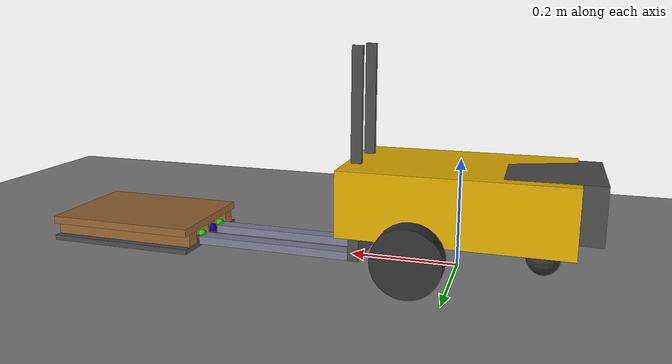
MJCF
<?xml version="1.0" encoding="utf-8"?>
<mujoco model="forklift_pallet_scene">

  <option timestep="0.002" gravity="0 0 -9.81" integrator="RK4" cone="elliptic"/>

  <default>
    <geom condim="3" friction="0.8 0.01 0.01"
          solref="0.02 1" solimp="0.9 0.95 0.001"/>
    <joint damping="0.5" armature="0.01"/>
  </default>

  <asset>
    <texture name="floor_tex" type="2d" builtin="checker"
             rgb1="0.6 0.6 0.6" rgb2="0.4 0.4 0.4" width="512" height="512"/>
    <material name="floor_mat"  texture="floor_tex" texrepeat="4 4" reflectance="0.1"/>
    <material name="body_mat"   rgba="0.9 0.7 0.0 1"/>
    <material name="wheel_mat"  rgba="0.2 0.2 0.2 1"/>
    <material name="fork_mat"   rgba="0.5 0.5 0.6 1"/>
    <material name="mast_mat"   rgba="0.3 0.3 0.3 1"/>
    <material name="pallet_mat" rgba="0.6 0.4 0.2 1"/>
  </asset>

  <worldbody>

    <geom name="floor" type="plane" size="5 5 0.1"
          material="floor_mat" condim="3" friction="0.8 0.01 0.01"
          solref="0.02 1" solimp="0.9 0.95 0.001"/>

    <!-- ── Forklift ── -->
    <body name="base_link" pos="0 0 0.13">
      <freejoint name="root"/>
      <geom name="base_geom" type="box" size="0.20 0.125 0.06"
            material="body_mat" mass="5.0"/>
      <geom name="counterweight_geom" type="box" size="0.08 0.10 0.05"
            pos="-0.16 0 0.01" material="mast_mat" mass="4.0"/>

      <body name="left_wheel_body" pos="0.06 0.175 -0.07">
        <joint name="left_wheel_joint" type="hinge" axis="0 1 0"
               damping="0.05" armature="0.005"/>
        <geom name="left_wheel_geom" type="cylinder"
              fromto="0 -0.02 0  0 0.02 0" size="0.06"
              material="wheel_mat" mass="0.5"
              friction="1.0 0.005 0.0001"
              solref="0.01 1" solimp="0.95 0.99 0.001"/>
      </body>

      <body name="right_wheel_body" pos="0.06 -0.175 -0.07">
        <joint name="right_wheel_joint" type="hinge" axis="0 1 0"
               damping="0.05" armature="0.005"/>
        <geom name="right_wheel_geom" type="cylinder"
              fromto="0 -0.02 0  0 0.02 0" size="0.06"
              material="wheel_mat" mass="0.5"
              friction="1.0 0.005 0.0001"
              solref="0.01 1" solimp="0.95 0.99 0.001"/>
      </body>

      <body name="caster_body" pos="-0.15 0 -0.10">
        <geom name="caster_geom" type="sphere" size="0.03"
              material="wheel_mat" mass="0.1"
              friction="0.001 0.001 0.001"
              solref="0.02 1" solimp="0.9 0.95 0.001"/>
      </body>

      <body name="mast_body" pos="0.18 0 0.0">
        <geom name="mast_geom_left" type="box" size="0.01 0.005 0.15"
              pos="0 0.05 0.12" material="mast_mat" mass="0.3"
              contype="0" conaffinity="0"/>
        <geom name="mast_geom_right" type="box" size="0.01 0.005 0.15"
              pos="0 -0.05 0.12" material="mast_mat" mass="0.3"
              contype="0" conaffinity="0"/>
        <body name="fork_carriage" pos="0 0 0.0">
          <joint name="fork_lift_joint" type="slide" axis="0 0 1"
                 range="0.0 0.20" damping="50.0" armature="0.01"/>
          <geom name="left_fork_geom" type="box" size="0.16 0.015 0.008"
                pos="0.16 0.04 -0.117" material="fork_mat" mass="0.3"/>
          <geom name="right_fork_geom" type="box" size="0.16 0.015 0.008"
                pos="0.16 -0.04 -0.117" material="fork_mat" mass="0.3"/>
          <geom name="carriage_plate_geom" type="box" size="0.01 0.07 0.04"
                pos="0.0 0 -0.08" material="mast_mat" mass="0.2"
                contype="0" conaffinity="0"/>
          <site name="fork_tip_site"  pos="0.32 0 -0.117" size="0.01" rgba="1 0 0 0.5"/>
          <site name="fork_root_site" pos="0.00 0 -0.117" size="0.01" rgba="1 0.5 0 0.5"/>
        </body>
      </body>
    </body>

    <!-- ── Platform ── -->
    <body name="platform" pos="0.65 0 0">
      <geom name="platform_geom" type="box" size="0.15 0.11 0.005"
            pos="0 0 0.005" material="mast_mat" mass="0.0"/>
    </body>

    <!-- ── Pallet ── -->
    <!--
      Separated from platform (sibling body, not child).
      body_pos[2] is set to platform_height in reset() so pallet sits on top of platform.
    -->
    <body name="pallet" pos="0.65 0 0">
      <geom name="bottom_deck" type="box" size="0.15 0.11 0.005"
            pos="0 0 0.005" material="pallet_mat" mass="0.0"/>
      <geom name="leg_left_outer" type="box" size="0.15 0.015 0.0125"
            pos="0 0.080 0.0225" material="pallet_mat" mass="0.0"/>
      <geom name="leg_inner" type="box" size="0.15 0.015 0.0125"
            pos="0 0.0 0.0225" material="pallet_mat" mass="0.0"/>
      <geom name="leg_right_outer" type="box" size="0.15 0.015 0.0125"
            pos="0 -0.080 0.0225" material="pallet_mat" mass="0.0"/>
      <geom name="top_deck" type="box" size="0.15 0.11 0.0075"
            pos="0 0 0.0425" material="pallet_mat" mass="0.0"/>
      <site name="left_slot_entry"  pos="-0.15  0.040 0.0225" size="0.008" rgba="0 1 0 0.8"/>
      <site name="right_slot_entry" pos="-0.15 -0.040 0.0225" size="0.008" rgba="0 1 0 0.8"/>
      <site name="slot_center"      pos="-0.15  0.000 0.0225" size="0.010" rgba="0 0 1 0.8"/>
      <site name="slot_center_exit" pos=" 0.15  0.000 0.0225" size="0.010" rgba="1 0 1 0.8"/>
    </body>

  </worldbody>

  <actuator>
    <velocity name="left_wheel_vel"  joint="left_wheel_joint"
              kv="5.0" ctrlrange="-5.0 5.0"/>
    <velocity name="right_wheel_vel" joint="right_wheel_joint"
              kv="5.0" ctrlrange="-5.0 5.0"/>
    <position name="fork_lift_pos"   joint="fork_lift_joint"
              kp="500.0" ctrlrange="0.0 0.20"/>
  </actuator>

  <sensor>
    <framepos  name="base_pos"  objtype="body" objname="base_link"/>
    <framequat name="base_quat" objtype="body" objname="base_link"/>
    <jointvel  name="left_wheel_vel_sensor"  joint="left_wheel_joint"/>
    <jointvel  name="right_wheel_vel_sensor" joint="right_wheel_joint"/>
    <jointpos  name="fork_height_sensor"     joint="fork_lift_joint"/>
    <framepos  name="fork_tip_pos"    objtype="site" objname="fork_tip_site"/>
    <framepos  name="slot_center_pos" objtype="site" objname="slot_center"/>
  </sensor>

</mujoco>
